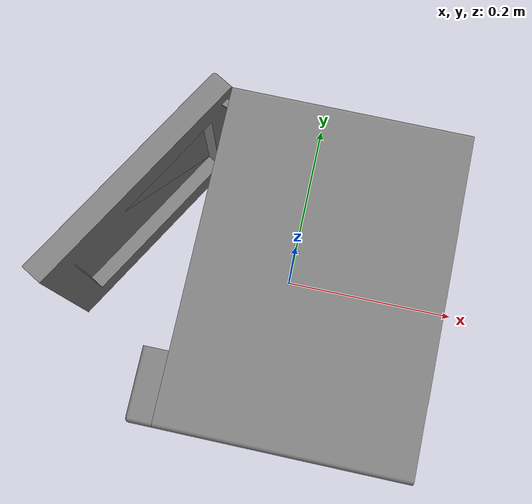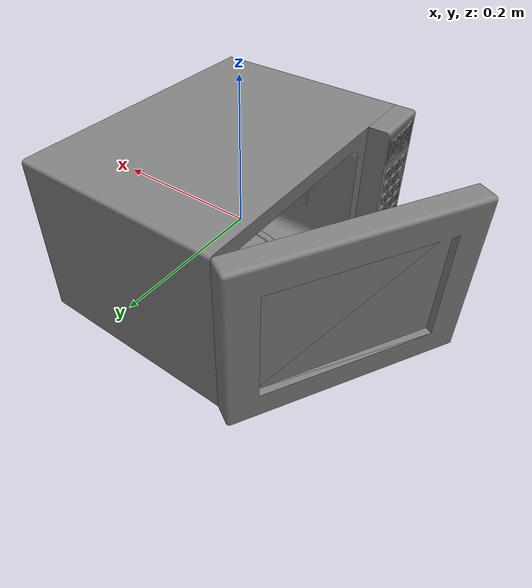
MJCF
<mujoco model="partnet_891f65c773939191c834958aed613724">
    <compiler angle="radian" />
    <size njmax="500" nconmax="100" />
    <asset>
        <mesh name="new-6" file="new-6.stl" scale="0.3 0.3 0.3" />
        <mesh name="new-5" file="new-5.stl" scale="0.3 0.3 0.3" />
        <mesh name="original-3" file="original-3.stl" scale="0.3 0.3 0.3" />
        <mesh name="original-4" file="original-4.stl" scale="0.3 0.3 0.3" />
        <mesh name="original-41" file="original-41.stl" scale="0.3 0.3 0.3" />
        <mesh name="original-36" file="original-36.stl" scale="0.3 0.3 0.3" />
        <mesh name="original-35" file="original-35.stl" scale="0.3 0.3 0.3" />
        <mesh name="original-19" file="original-19.stl" scale="0.3 0.3 0.3" />
        <mesh name="original-42" file="original-42.stl" scale="0.3 0.3 0.3" />
        <mesh name="original-34" file="original-34.stl" scale="0.3 0.3 0.3" />
        <mesh name="original-31" file="original-31.stl" scale="0.3 0.3 0.3" />
        <mesh name="original-18" file="original-18.stl" scale="0.3 0.3 0.3" />
        <mesh name="original-17" file="original-17.stl" scale="0.3 0.3 0.3" />
        <mesh name="original-33" file="original-33.stl" scale="0.3 0.3 0.3" />
        <mesh name="original-32" file="original-32.stl" scale="0.3 0.3 0.3" />
        <mesh name="original-16" file="original-16.stl" scale="0.3 0.3 0.3" />
        <mesh name="original-15" file="original-15.stl" scale="0.3 0.3 0.3" />
        <mesh name="original-30" file="original-30.stl" scale="0.3 0.3 0.3" />
        <mesh name="original-14" file="original-14.stl" scale="0.3 0.3 0.3" />
        <mesh name="original-29" file="original-29.stl" scale="0.3 0.3 0.3" />
        <mesh name="original-40" file="original-40.stl" scale="0.3 0.3 0.3" />
        <mesh name="original-13" file="original-13.stl" scale="0.3 0.3 0.3" />
        <mesh name="original-39" file="original-39.stl" scale="0.3 0.3 0.3" />
        <mesh name="original-22" file="original-22.stl" scale="0.3 0.3 0.3" />
        <mesh name="original-20" file="original-20.stl" scale="0.3 0.3 0.3" />
        <mesh name="original-38" file="original-38.stl" scale="0.3 0.3 0.3" />
        <mesh name="original-23" file="original-23.stl" scale="0.3 0.3 0.3" />
        <mesh name="original-37" file="original-37.stl" scale="0.3 0.3 0.3" />
        <mesh name="original-48" file="original-48.stl" scale="0.3 0.3 0.3" />
        <mesh name="original-21" file="original-21.stl" scale="0.3 0.3 0.3" />
        <mesh name="original-46" file="original-46.stl" scale="0.3 0.3 0.3" />
        <mesh name="original-27" file="original-27.stl" scale="0.3 0.3 0.3" />
        <mesh name="original-28" file="original-28.stl" scale="0.3 0.3 0.3" />
        <mesh name="original-45" file="original-45.stl" scale="0.3 0.3 0.3" />
        <mesh name="original-47" file="original-47.stl" scale="0.3 0.3 0.3" />
        <mesh name="original-25" file="original-25.stl" scale="0.3 0.3 0.3" />
        <mesh name="original-44" file="original-44.stl" scale="0.3 0.3 0.3" />
        <mesh name="original-24" file="original-24.stl" scale="0.3 0.3 0.3" />
        <mesh name="original-43" file="original-43.stl" scale="0.3 0.3 0.3" />
        <mesh name="original-26" file="original-26.stl" scale="0.3 0.3 0.3" />
        <mesh name="original-10" file="original-10.stl" scale="0.3 0.3 0.3" />
        <mesh name="original-12" file="original-12.stl" scale="0.3 0.3 0.3" />
        <mesh name="new-4" file="new-4.stl" scale="0.3 0.3 0.3" />
        <mesh name="original-49" file="original-49.stl" scale="0.3 0.3 0.3" />
        <mesh name="original-51" file="original-51.stl" scale="0.3 0.3 0.3" />
        <mesh name="original-1" file="original-1.stl" scale="0.3 0.3 0.3" />
        <mesh name="original-50" file="original-50.stl" scale="0.3 0.3 0.3" />
        <mesh name="new-3" file="new-3.stl" scale="0.3 0.3 0.3" />
        <mesh name="new-2" file="new-2.stl" scale="0.3 0.3 0.3" />
        <mesh name="new-1" file="new-1.stl" scale="0.3 0.3 0.3" />
        <mesh name="new-0" file="new-0.stl" scale="0.3 0.3 0.3" />
    </asset>
    <worldbody>
    <body>
        <body name="object">
        <geom quat="0.5 0.5 -0.5 -0.5" type="mesh" group="0" mesh="original-12" conaffinity="0" contype="0" />
        <geom quat="0.5 0.5 -0.5 -0.5" type="mesh" group="0" mesh="new-4" conaffinity="0" contype="0" />
        <geom quat="0.5 0.5 -0.5 -0.5" type="mesh" group="0" mesh="original-49" conaffinity="0" contype="0" />
        <geom quat="0.5 0.5 -0.5 -0.5" type="mesh" group="0" mesh="original-51" conaffinity="0" contype="0" />
        <geom quat="0.5 0.5 -0.5 -0.5" type="mesh" group="0" mesh="original-1" conaffinity="0" contype="0" />
        <geom quat="0.5 0.5 -0.5 -0.5" type="mesh" group="0" mesh="original-50" conaffinity="0" contype="0" />
        <geom quat="0.5 0.5 -0.5 -0.5" type="mesh" group="0" mesh="new-3" conaffinity="0" contype="0" />
        <geom quat="0.5 0.5 -0.5 -0.5" type="mesh" group="0" mesh="new-2" conaffinity="0" contype="0" />
        <geom quat="0.5 0.5 -0.5 -0.5" type="mesh" group="0" mesh="new-1" conaffinity="0" contype="0" />
        <geom quat="0.5 0.5 -0.5 -0.5" type="mesh" group="0" mesh="new-0" conaffinity="0" contype="0" />
        <body name="link_0" pos="-0.1077654 0.1856355 0.0" quat="0.5 0.5 -0.5 -0.5">
            <inertial pos="0.1244487 0.00499332 0.0896772" quat="0.00349468 0.499467 -0.00703786 0.866297" mass="72.4061" diaginertia="9.0744 5.85664 3.30306" />
            <joint name="joint_0" pos="0.0 0.0 0.0" axis="0 -1 0" limited="true" range="-0.523599 1.39626" />

            <geom name="panel" pos="0.1856355 0.0 -0.1077654" type="mesh" group="0" mesh="new-6" />
            <geom pos="0.1856355 0.0 -0.1077654" type="mesh" group="0" mesh="new-5" />
            <geom pos="0.1856355 0.0 -0.1077654" type="mesh" group="0" mesh="original-3" />
            <geom pos="0.1856355 0.0 -0.1077654" type="mesh" group="0" mesh="original-4" />
        </body>
        <body name="link_1" pos="-0.1367352 -0.16256459999999998 -0.06872099999999999" quat="0.5 0.5 -0.5 -0.5">
            <inertial pos="0.015758039999999997 0.02348802 0.0014827559999999998" quat="0.416789 0.571373 -0.416729 0.571101" mass="0.0153622" diaginertia="5.42181e-06 2.78238e-06 2.76854e-06" />
            <joint name="joint_1" pos="0.0 0.0 0.0" axis="0 0 -1" type="slide" limited="true" range="0.0 0.0012" />
            <geom pos="-0.16256459999999998 0.06872099999999999 -0.1367352" type="mesh" group="0" mesh="original-41" />
            <geom pos="-0.16256459999999998 0.06872099999999999 -0.1367352" type="mesh" group="0" mesh="original-36" />
        </body>
        <body name="link_2" pos="-0.1367352 -0.16256459999999998 -0.06872099999999999" quat="0.5 0.5 -0.5 -0.5">
            <inertial pos="-0.00565305 0.023483909999999997 0.0014769989999999999" quat="0.523586 0.475286 -0.523487 0.475312" mass="0.0152598" diaginertia="5.40253e-06 2.76766e-06 2.76238e-06" />
            <joint name="joint_2" pos="0.0 0.0 0.0" axis="0 0 -1" type="slide" limited="true" range="0.0 0.0012" />
            <geom pos="-0.16256459999999998 0.06872099999999999 -0.1367352" type="mesh" group="0" mesh="original-35" />
            <geom pos="-0.16256459999999998 0.06872099999999999 -0.1367352" type="mesh" group="0" mesh="original-19" />
        </body>
        <body name="link_3" pos="-0.1367352 -0.16256459999999998 -0.06872099999999999" quat="0.5 0.5 -0.5 -0.5">
            <inertial pos="-0.02708955 0.023480309999999997 0.001485852" quat="0.511133 0.489369 -0.510207 0.488824" mass="0.0154119" diaginertia="5.43794e-06 2.79688e-06 2.77117e-06" />
            <joint name="joint_3" pos="0.0 0.0 0.0" axis="0 0 -1" type="slide" limited="true" range="0.0 0.0012" />
            <geom pos="-0.16256459999999998 0.06872099999999999 -0.1367352" type="mesh" group="0" mesh="original-42" />
            <geom pos="-0.16256459999999998 0.06872099999999999 -0.1367352" type="mesh" group="0" mesh="original-34" />
        </body>
        <body name="link_4" pos="-0.1367352 -0.16256459999999998 -0.06872099999999999" quat="0.5 0.5 -0.5 -0.5">
            <inertial pos="0.01576515 0.0434799 0.001475853" quat="0.433322 0.558723 -0.433633 0.55859" mass="0.015244" diaginertia="5.40095e-06 2.76746e-06 2.76057e-06" />
            <joint name="joint_4" pos="0.0 0.0 0.0" axis="0 0 -1" type="slide" limited="true" range="0.0 0.0012" />
            <geom pos="-0.16256459999999998 0.06872099999999999 -0.1367352" type="mesh" group="0" mesh="original-31" />
            <geom pos="-0.16256459999999998 0.06872099999999999 -0.1367352" type="mesh" group="0" mesh="original-18" />
        </body>
        <body name="link_5" pos="-0.1367352 -0.16256459999999998 -0.06872099999999999" quat="0.5 0.5 -0.5 -0.5">
            <inertial pos="-0.00565224 0.0434718 0.001476597" quat="0.50045 0.499561 -0.500384 0.499604" mass="0.0152543" diaginertia="5.40253e-06 2.76929e-06 2.76059e-06" />
            <joint name="joint_5" pos="0.0 0.0 0.0" axis="0 0 -1" type="slide" limited="true" range="0.0 0.0012" />
            <geom pos="-0.16256459999999998 0.06872099999999999 -0.1367352" type="mesh" group="0" mesh="original-17" />
            <geom pos="-0.16256459999999998 0.06872099999999999 -0.1367352" type="mesh" group="0" mesh="original-33" />
        </body>
        <body name="link_6" pos="-0.1367352 -0.16256459999999998 -0.06872099999999999" quat="0.5 0.5 -0.5 -0.5">
            <inertial pos="-0.027066990000000003 0.043500899999999995 0.001475286" quat="0.538897 0.4578 -0.539781 0.456777" mass="0.0152383" diaginertia="5.41307e-06 2.78393e-06 2.75593e-06" />
            <joint name="joint_6" pos="0.0 0.0 0.0" axis="0 0 -1" type="slide" limited="true" range="0.0 0.0012" />
            <geom pos="-0.16256459999999998 0.06872099999999999 -0.1367352" type="mesh" group="0" mesh="original-32" />
            <geom pos="-0.16256459999999998 0.06872099999999999 -0.1367352" type="mesh" group="0" mesh="original-16" />
        </body>
        <body name="link_7" pos="-0.1367352 -0.16256459999999998 -0.06872099999999999" quat="0.5 0.5 -0.5 -0.5">
            <inertial pos="0.01576062 0.06345719999999999 0.0014763629999999999" quat="0.498386 0.501707 -0.498157 0.501738" mass="0.0152511" diaginertia="5.40133e-06 2.76679e-06 2.76181e-06" />
            <joint name="joint_7" pos="0.0 0.0 0.0" axis="0 0 -1" type="slide" limited="true" range="0.0 0.0012" />
            <geom pos="-0.16256459999999998 0.06872099999999999 -0.1367352" type="mesh" group="0" mesh="original-15" />
            <geom pos="-0.16256459999999998 0.06872099999999999 -0.1367352" type="mesh" group="0" mesh="original-30" />
        </body>
        <body name="link_8" pos="-0.1367352 -0.16256459999999998 -0.06872099999999999" quat="0.5 0.5 -0.5 -0.5">
            <inertial pos="-0.005642039999999999 0.0634521 0.001476567" quat="0.460979 0.535865 -0.460969 0.536521" mass="0.0152547" diaginertia="5.40482e-06 2.77216e-06 2.75997e-06" />
            <joint name="joint_8" pos="0.0 0.0 0.0" axis="0 0 -1" type="slide" limited="true" range="0.0 0.0012" />
            <geom pos="-0.16256459999999998 0.06872099999999999 -0.1367352" type="mesh" group="0" mesh="original-14" />
            <geom pos="-0.16256459999999998 0.06872099999999999 -0.1367352" type="mesh" group="0" mesh="original-29" />
        </body>
        <body name="link_9" pos="-0.1367352 -0.16256459999999998 -0.06872099999999999" quat="0.5 0.5 -0.5 -0.5">
            <inertial pos="-0.02705958 0.0634584 0.001470678" quat="0.493278 0.506366 -0.493456 0.506726" mass="0.0151735" diaginertia="5.39223e-06 2.76187e-06 2.75547e-06" />
            <joint name="joint_9" pos="0.0 0.0 0.0" axis="0 0 -1" type="slide" limited="true" range="0.0 0.0012" />
            <geom pos="-0.16256459999999998 0.06872099999999999 -0.1367352" type="mesh" group="0" mesh="original-40" />
            <geom pos="-0.16256459999999998 0.06872099999999999 -0.1367352" type="mesh" group="0" mesh="original-13" />
        </body>
        <body name="link_10" pos="-0.1367352 -0.16256459999999998 -0.06872099999999999" quat="0.5 0.5 -0.5 -0.5">
            <inertial pos="0.01577286 0.083445 0.001477026" quat="0.476989 0.52168 -0.477166 0.522153" mass="0.0152608" diaginertia="5.40687e-06 2.77474e-06 2.75963e-06" />
            <joint name="joint_10" pos="0.0 0.0 0.0" axis="0 0 -1" type="slide" limited="true" range="0.0 0.0012" />
            <geom pos="-0.16256459999999998 0.06872099999999999 -0.1367352" type="mesh" group="0" mesh="original-39" />
            <geom pos="-0.16256459999999998 0.06872099999999999 -0.1367352" type="mesh" group="0" mesh="original-22" />
        </body>
        <body name="link_11" pos="-0.1367352 -0.16256459999999998 -0.06872099999999999" quat="0.5 0.5 -0.5 -0.5">
            <inertial pos="-0.0056418 0.0834357 0.001481073" quat="0.515069 0.484096 -0.515002 0.4849" mass="0.015318" diaginertia="5.42126e-06 2.78827e-06 2.76198e-06" />
            <joint name="joint_11" pos="0.0 0.0 0.0" axis="0 0 -1" type="slide" limited="true" range="0.0 0.0012" />
            <geom pos="-0.16256459999999998 0.06872099999999999 -0.1367352" type="mesh" group="0" mesh="original-20" />
            <geom pos="-0.16256459999999998 0.06872099999999999 -0.1367352" type="mesh" group="0" mesh="original-38" />
        </body>
        <body name="link_12" pos="-0.1367352 -0.16256459999999998 -0.06872099999999999" quat="0.5 0.5 -0.5 -0.5">
            <inertial pos="-0.02707638 0.08345910000000001 0.001464678" quat="0.424816 0.565551 -0.424962 0.56488" mass="0.0150911" diaginertia="5.3894e-06 2.76162e-06 2.75066e-06" />
            <joint name="joint_12" pos="0.0 0.0 0.0" axis="0 0 -1" type="slide" limited="true" range="0.0 0.0012" />
            <geom pos="-0.16256459999999998 0.06872099999999999 -0.1367352" type="mesh" group="0" mesh="original-23" />
            <geom pos="-0.16256459999999998 0.06872099999999999 -0.1367352" type="mesh" group="0" mesh="original-37" />
        </body>
        <body name="link_13" pos="-0.1367352 -0.16256459999999998 -0.06872099999999999" quat="0.5 0.5 -0.5 -0.5">
            <inertial pos="0.01576344 0.1034364 0.0014538090000000001" quat="1.15734e-06 0.707107 1.15734e-06 0.707107" mass="0.0149451" diaginertia="5.37555e-06 2.74744e-06 2.74693e-06" />
            <joint name="joint_13" pos="0.0 0.0 0.0" axis="0 0 -1" type="slide" limited="true" range="0.0 0.0012" />
            <geom pos="-0.16256459999999998 0.06872099999999999 -0.1367352" type="mesh" group="0" mesh="original-48" />
            <geom pos="-0.16256459999999998 0.06872099999999999 -0.1367352" type="mesh" group="0" mesh="original-21" />
        </body>
        <body name="link_14" pos="-0.1367352 -0.16256459999999998 -0.06872099999999999" quat="0.5 0.5 -0.5 -0.5">
            <inertial pos="-0.0057119399999999996 0.10342829999999999 0.001485846" quat="-0.0488533 0.706881 0.0490433 0.703937" mass="0.0153893" diaginertia="5.4433e-06 2.79118e-06 2.78271e-06" />
            <joint name="joint_14" pos="0.0 0.0 0.0" axis="0 0 -1" type="slide" limited="true" range="0.0 0.0012" />
            <geom pos="-0.16256459999999998 0.06872099999999999 -0.1367352" type="mesh" group="0" mesh="original-46" />
            <geom pos="-0.16256459999999998 0.06872099999999999 -0.1367352" type="mesh" group="0" mesh="original-27" />
        </body>
        <body name="link_15" pos="-0.1367352 -0.16256459999999998 -0.06872099999999999" quat="0.5 0.5 -0.5 -0.5">
            <inertial pos="-0.027059069999999998 0.10350929999999998 0.001481121" quat="0.526718 0.471473 -0.529363 0.469101" mass="0.0153223" diaginertia="5.447e-06 2.81288e-06 2.76291e-06" />
            <joint name="joint_15" pos="0.0 0.0 0.0" axis="0 0 -1" type="slide" limited="true" range="0.0 0.0012" />
            <geom pos="-0.16256459999999998 0.06872099999999999 -0.1367352" type="mesh" group="0" mesh="original-28" />
            <geom pos="-0.16256459999999998 0.06872099999999999 -0.1367352" type="mesh" group="0" mesh="original-45" />
        </body>
        <body name="link_16" pos="-0.1367352 -0.16256459999999998 -0.06872099999999999" quat="0.5 0.5 -0.5 -0.5">
            <inertial pos="0.01576431 0.12343319999999999 0.001462365" quat="0.521185 0.477846 -0.521504 0.47756" mass="0.0150669" diaginertia="5.38168e-06 2.7526e-06 2.75092e-06" />
            <joint name="joint_16" pos="0.0 0.0 0.0" axis="0 0 -1" type="slide" limited="true" range="0.0 0.0012" />
            <geom pos="-0.16256459999999998 0.06872099999999999 -0.1367352" type="mesh" group="0" mesh="original-47" />
            <geom pos="-0.16256459999999998 0.06872099999999999 -0.1367352" type="mesh" group="0" mesh="original-25" />
        </body>
        <body name="link_17" pos="-0.1367352 -0.16256459999999998 -0.06872099999999999" quat="0.5 0.5 -0.5 -0.5">
            <inertial pos="-0.00561699 0.1234197 0.0014857470000000002" quat="0.00340111 0.706275 -0.00319812 0.707922" mass="0.0154076" diaginertia="5.43481e-06 2.78378e-06 2.78115e-06" />
            <joint name="joint_17" pos="0.0 0.0 0.0" axis="0 0 -1" type="slide" limited="true" range="0.0 0.0012" />
            <geom pos="-0.16256459999999998 0.06872099999999999 -0.1367352" type="mesh" group="0" mesh="original-44" />
            <geom pos="-0.16256459999999998 0.06872099999999999 -0.1367352" type="mesh" group="0" mesh="original-24" />
        </body>
        <body name="link_18" pos="-0.1367352 -0.16256459999999998 -0.06872099999999999" quat="0.5 0.5 -0.5 -0.5">
            <inertial pos="-0.02709618 0.1234236 0.0014861789999999998" quat="-0.00870997 0.707735 0.00871353 0.706371" mass="0.0154121" diaginertia="5.43422e-06 2.78341e-06 2.78114e-06" />
            <joint name="joint_18" pos="0.0 0.0 0.0" axis="0 0 -1" type="slide" limited="true" range="0.0 0.0012" />
            <geom pos="-0.16256459999999998 0.06872099999999999 -0.1367352" type="mesh" group="0" mesh="original-43" />
            <geom pos="-0.16256459999999998 0.06872099999999999 -0.1367352" type="mesh" group="0" mesh="original-26" />
        </body>
        <body name="link_19" pos="0.015551849999999999 0.0334461 0.0" quat="0.5 0.5 -0.5 -0.5">
            <inertial pos="-1.7087429999999998e-08 -0.0667362 -9.07341e-10" quat="0.707107 0 0 0.707107" mass="8.33956" diaginertia="0.417774 0.209422 0.209422" />
            <joint name="joint_19" pos="0.0 0.0 0.0" axis="0 1 0" />
            <geom pos="0.0334461 0.0 0.015551849999999999" type="mesh" group="0" mesh="original-10" />
        </body>
    </body>
        <site name="bottom_site" pos="0 0 -0.3" rgba="0 0 0 0" size="0.005" />
        <site name="top_site" pos="0 0 0.3" rgba="0 0 0 0" size="0.005" />
        <site name="horizontal_radius_site" pos="0.3 0 0" rgba="0 0 0 0" size="0.1" />
    </body>
    </worldbody>
</mujoco>
